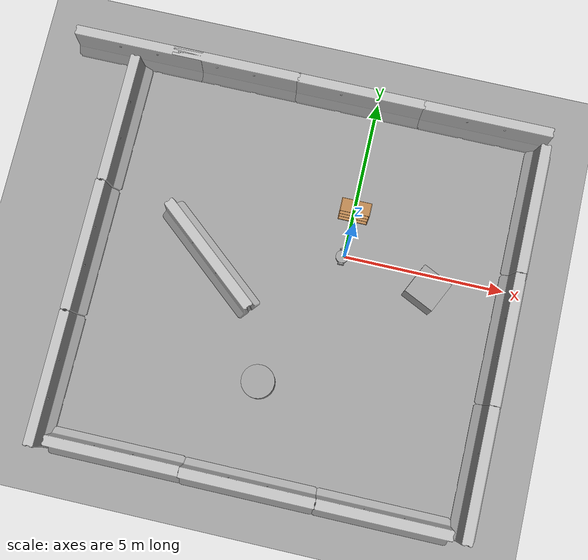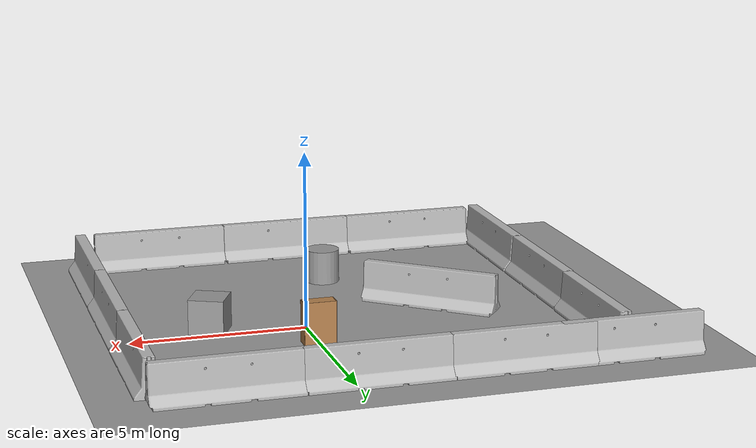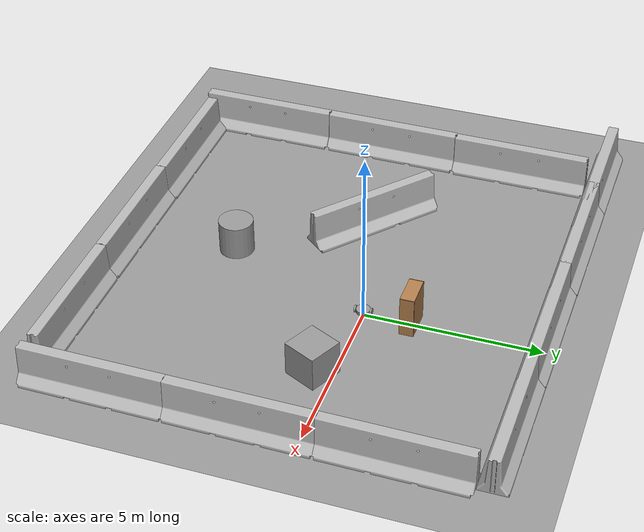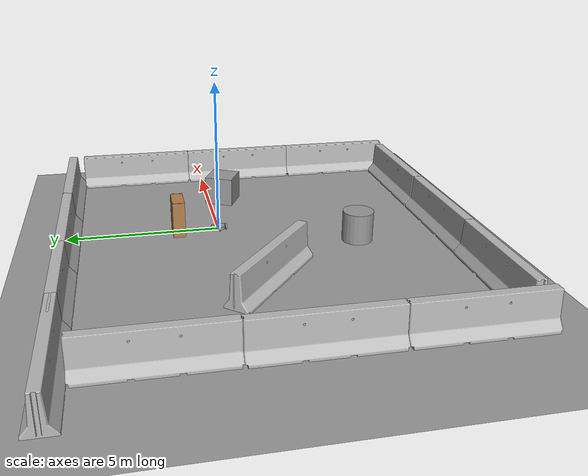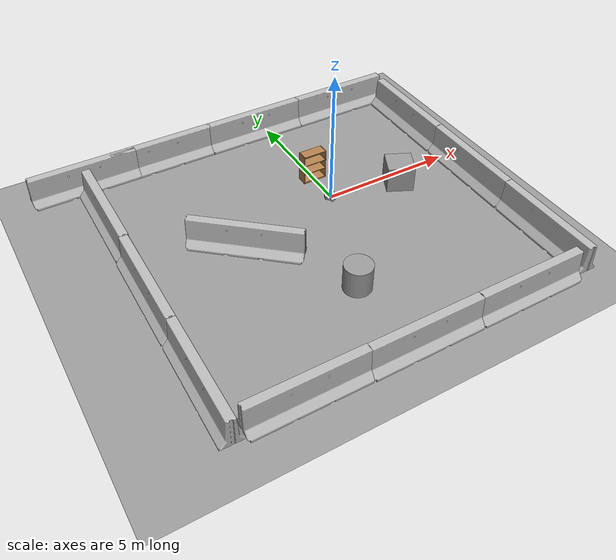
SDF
<sdf version="1.6">
 <world name="default">
  <light name="sun" type="directional">
   <pose>0 0 10 0 -0 0</pose>
   <diffuse>0.8 0.8 0.8 1</diffuse>
   <specular>0.2 0.2 0.2 1</specular>
   <attenuation>
    <range>1000</range>
    <constant>0.9</constant>
    <linear>0.01</linear>
    <quadratic>0.001</quadratic>
   </attenuation>
   <direction>0.5 0.1 -0.9</direction>
  </light>
  <scene><ambient>0.4 0.4 0.4 1</ambient><background>0.7 0.7 0.7 1</background><shadows>1</shadows></scene>
  <physics name="default_physics" default="0" type="ode">
   <max_step_size>0.01</max_step_size>
   <real_time_factor>1</real_time_factor>
   <real_time_update_rate>100</real_time_update_rate>
  </physics>
  <model name="bookshelf">
   <static>1</static>
   <link name="link">
    <inertial><mass>1</mass></inertial>
    <collision name="back">
     <pose>0 0.005 0.6 0 -0 0</pose>
     <geometry><box><size>0.9 0.01 1.2</size></box></geometry>
    </collision>
    <visual name="visual1">
     <pose>0 0.005 0.6 0 -0 0</pose>
     <geometry><box><size>0.9 0.01 1.2</size></box></geometry>
     <material>
      <script><uri>file://media/materials/scripts/gazebo.material</uri><name>Gazebo/Wood</name></script>
     </material>
    </visual>
    <collision name="left_side">
     <pose>0.45 -0.195 0.6 0 -0 0</pose>
     <geometry><box><size>0.02 0.4 1.2</size></box></geometry>
    </collision>
    <visual name="visual2">
     <pose>0.45 -0.195 0.6 0 -0 0</pose>
     <geometry><box><size>0.02 0.4 1.2</size></box></geometry>
     <material>
      <script><uri>file://media/materials/scripts/gazebo.material</uri><name>Gazebo/Wood</name></script>
     </material>
    </visual>
    <collision name="right_side">
     <pose>-0.45 -0.195 0.6 0 -0 0</pose>
     <geometry><box><size>0.02 0.4 1.2</size></box></geometry>
    </collision>
    <visual name="visual3">
     <pose>-0.45 -0.195 0.6 0 -0 0</pose>
     <geometry><box><size>0.02 0.4 1.2</size></box></geometry>
     <material>
      <script><uri>file://media/materials/scripts/gazebo.material</uri><name>Gazebo/Wood</name></script>
     </material>
    </visual>
    <collision name="bottom">
     <pose>0 -0.195 0.03 0 -0 0</pose>
     <geometry><box><size>0.88 0.4 0.06</size></box></geometry>
    </collision>
    <visual name="visual4">
     <pose>0 -0.195 0.03 0 -0 0</pose>
     <geometry><box><size>0.88 0.4 0.06</size></box></geometry>
     <material>
      <script><uri>file://media/materials/scripts/gazebo.material</uri><name>Gazebo/Wood</name></script>
     </material>
    </visual>
    <collision name="top">
     <pose>0 -0.195 1.19 0 -0 0</pose>
     <geometry><box><size>0.88 0.4 0.02</size></box></geometry>
    </collision>
    <visual name="visual5">
     <pose>0 -0.195 1.19 0 -0 0</pose>
     <geometry><box><size>0.88 0.4 0.02</size></box></geometry>
     <material>
      <script><uri>file://media/materials/scripts/gazebo.material</uri><name>Gazebo/Wood</name></script>
     </material>
    </visual>
    <collision name="low_shelf">
     <pose>0 -0.195 0.43 0 -0 0</pose>
     <geometry><box><size>0.88 0.4 0.02</size></box></geometry>
    </collision>
    <visual name="visual6">
     <pose>0 -0.195 0.43 0 -0 0</pose>
     <geometry><box><size>0.88 0.4 0.02</size></box></geometry>
     <material>
      <script><uri>file://media/materials/scripts/gazebo.material</uri><name>Gazebo/Wood</name></script>
     </material>
    </visual>
    <collision name="high_shelf">
     <pose>0 -0.195 0.8 0 -0 0</pose>
     <geometry><box><size>0.88 0.4 0.02</size></box></geometry>
    </collision>
    <visual name="visual7">
     <pose>0 -0.195 0.8 0 -0 0</pose>
     <geometry><box><size>0.88 0.4 0.02</size></box></geometry>
     <material>
      <script><uri>file://media/materials/scripts/gazebo.material</uri><name>Gazebo/Wood</name></script>
     </material>
    </visual>
    <velocity_decay><linear>0</linear><angular>0</angular></velocity_decay>
   </link>
   <pose>0 1.53026 0 0 -0 0</pose>
  </model>
  <model name="jersey_barrier">
   <static>1</static>
   <link name="link">
    <visual name="visual">
     <geometry>
      <mesh><uri>model://jersey_barrier/meshes/jersey_barrier.dae</uri><scale>1 1 1</scale></mesh>
     </geometry>
    </visual>
    <collision name="upright">
     <pose>0 0 0.5715 0 -0 0</pose>
     <geometry><box><size>4.06542 0.3063 1.143</size></box></geometry>
    </collision>
    <collision name="base">
     <pose>0 0 0.032258 0 -0 0</pose>
     <geometry><box><size>4.06542 0.8107 0.064516</size></box></geometry>
    </collision>
    <collision name="base2">
     <pose>0 0 0.1 0 -0 0</pose>
     <geometry><box><size>4.06542 0.65 0.1</size></box></geometry>
    </collision>
    <collision name="base3">
     <pose>0 0 0.2 0 -0 0</pose>
     <geometry><box><size>4.06542 0.5 0.1</size></box></geometry>
    </collision>
    <collision name="left-angle">
     <pose>0 -0.224 0.2401 0.9 -0 0</pose>
     <geometry><box><size>4.06542 0.5 0.064516</size></box></geometry>
    </collision>
    <collision name="right-angle">
     <pose>0 0.224 0.2401 -0.9 0 0</pose>
     <geometry><box><size>4.06542 0.5 0.064516</size></box></geometry>
    </collision>
    <velocity_decay><linear>0</linear><angular>0</angular></velocity_decay>
   </link>
   <pose>-4 -1 0 0 0 -0.7</pose>
  </model>
  <model name="ground_plane_0">
   <static>1</static>
   <link name="link">
    <collision name="collision">
     <geometry><plane><normal>0 0 1</normal><size>100 100</size></plane></geometry>
     <surface><friction><ode><mu>100</mu><mu2>50</mu2></ode></friction></surface>
    </collision>
    <visual name="visual">
     <cast_shadows>0</cast_shadows>
     <geometry><plane><normal>0 0 1</normal><size>100 100</size></plane></geometry>
     <material>
      <script><uri>file://media/materials/scripts/gazebo.material</uri><name>Gazebo/Grey</name></script>
     </material>
    </visual>
    <velocity_decay><linear>0</linear><angular>0</angular></velocity_decay>
   </link>
   <pose>0.497681 0 0 0 -0 0</pose>
  </model>
  <model name="unit_cylinder_1">
   <pose>-1.69708 -4.3607 0.49912 0 0 -1e-06</pose>
   <link name="link">
    <inertial>
     <mass>1</mass>
     <inertia><ixx>1</ixx><ixy>0</ixy><ixz>0</ixz><iyy>1</iyy><iyz>0</iyz><izz>1</izz></inertia>
    </inertial>
    <collision name="collision">
     <geometry><cylinder><radius>0.5</radius><length>1</length></cylinder></geometry>
    </collision>
    <visual name="visual">
     <geometry><cylinder><radius>0.5</radius><length>1</length></cylinder></geometry>
     <material>
      <script><uri>file://media/materials/scripts/gazebo.material</uri><name>Gazebo/Grey</name></script>
     </material>
    </visual>
    <velocity_decay><linear>0</linear><angular>0</angular></velocity_decay>
   </link>
   <static>0</static>
  </model>
  <gravity>0 0 -9.8</gravity>
  <magnetic_field>6e-06 2.3e-05 -4.2e-05</magnetic_field>
  <atmosphere type="adiabatic"/>
  <spherical_coordinates>
   <surface_model>EARTH_WGS84</surface_model>
   <latitude_deg>0</latitude_deg>
   <longitude_deg>0</longitude_deg>
   <elevation>0</elevation>
   <heading_deg>0</heading_deg>
  </spherical_coordinates>
  <model name="jersey_barrier_0">
   <static>1</static>
   <link name="link">
    <visual name="visual">
     <geometry>
      <mesh><uri>model://jersey_barrier/meshes/jersey_barrier.dae</uri><scale>1 1 1</scale></mesh>
     </geometry>
    </visual>
    <collision name="upright">
     <pose>0 0 0.5715 0 -0 0</pose>
     <geometry><box><size>4.06542 0.3063 1.143</size></box></geometry>
    </collision>
    <collision name="base">
     <pose>0 0 0.032258 0 -0 0</pose>
     <geometry><box><size>4.06542 0.8107 0.064516</size></box></geometry>
    </collision>
    <collision name="base2">
     <pose>0 0 0.1 0 -0 0</pose>
     <geometry><box><size>4.06542 0.65 0.1</size></box></geometry>
    </collision>
    <collision name="base3">
     <pose>0 0 0.2 0 -0 0</pose>
     <geometry><box><size>4.06542 0.5 0.1</size></box></geometry>
    </collision>
    <collision name="left-angle">
     <pose>0 -0.224 0.2401 0.9 -0 0</pose>
     <geometry><box><size>4.06542 0.5 0.064516</size></box></geometry>
    </collision>
    <collision name="right-angle">
     <pose>0 0.224 0.2401 -0.9 0 0</pose>
     <geometry><box><size>4.06542 0.5 0.064516</size></box></geometry>
    </collision>
   </link>
   <pose>2.71724 -7.40041 0 0 -0 0</pose>
  </model>
  <model name="jersey_barrier_1">
   <static>1</static>
   <link name="link">
    <visual name="visual">
     <geometry>
      <mesh><uri>model://jersey_barrier/meshes/jersey_barrier.dae</uri><scale>1 1 1</scale></mesh>
     </geometry>
    </visual>
    <collision name="upright">
     <pose>0 0 0.5715 0 -0 0</pose>
     <geometry><box><size>4.06542 0.3063 1.143</size></box></geometry>
    </collision>
    <collision name="base">
     <pose>0 0 0.032258 0 -0 0</pose>
     <geometry><box><size>4.06542 0.8107 0.064516</size></box></geometry>
    </collision>
    <collision name="base2">
     <pose>0 0 0.1 0 -0 0</pose>
     <geometry><box><size>4.06542 0.65 0.1</size></box></geometry>
    </collision>
    <collision name="base3">
     <pose>0 0 0.2 0 -0 0</pose>
     <geometry><box><size>4.06542 0.5 0.1</size></box></geometry>
    </collision>
    <collision name="left-angle">
     <pose>0 -0.224 0.2401 0.9 -0 0</pose>
     <geometry><box><size>4.06542 0.5 0.064516</size></box></geometry>
    </collision>
    <collision name="right-angle">
     <pose>0 0.224 0.2401 -0.9 0 0</pose>
     <geometry><box><size>4.06542 0.5 0.064516</size></box></geometry>
    </collision>
   </link>
   <pose>-1.3218 -7.40063 0 0 -0 0</pose>
  </model>
  <model name="jersey_barrier_2">
   <static>1</static>
   <link name="link">
    <visual name="visual">
     <geometry>
      <mesh><uri>model://jersey_barrier/meshes/jersey_barrier.dae</uri><scale>1 1 1</scale></mesh>
     </geometry>
    </visual>
    <collision name="upright">
     <pose>0 0 0.5715 0 -0 0</pose>
     <geometry><box><size>4.06542 0.3063 1.143</size></box></geometry>
    </collision>
    <collision name="base">
     <pose>0 0 0.032258 0 -0 0</pose>
     <geometry><box><size>4.06542 0.8107 0.064516</size></box></geometry>
    </collision>
    <collision name="base2">
     <pose>0 0 0.1 0 -0 0</pose>
     <geometry><box><size>4.06542 0.65 0.1</size></box></geometry>
    </collision>
    <collision name="base3">
     <pose>0 0 0.2 0 -0 0</pose>
     <geometry><box><size>4.06542 0.5 0.1</size></box></geometry>
    </collision>
    <collision name="left-angle">
     <pose>0 -0.224 0.2401 0.9 -0 0</pose>
     <geometry><box><size>4.06542 0.5 0.064516</size></box></geometry>
    </collision>
    <collision name="right-angle">
     <pose>0 0.224 0.2401 -0.9 0 0</pose>
     <geometry><box><size>4.06542 0.5 0.064516</size></box></geometry>
    </collision>
   </link>
   <pose>-5.33964 -7.38225 0 0 -0 0</pose>
  </model>
  <model name="jersey_barrier_3">
   <static>1</static>
   <link name="link">
    <visual name="visual">
     <geometry>
      <mesh><uri>model://jersey_barrier/meshes/jersey_barrier.dae</uri><scale>1 1 1</scale></mesh>
     </geometry>
    </visual>
    <collision name="upright">
     <pose>0 0 0.5715 0 -0 0</pose>
     <geometry><box><size>4.06542 0.3063 1.143</size></box></geometry>
    </collision>
    <collision name="base">
     <pose>0 0 0.032258 0 -0 0</pose>
     <geometry><box><size>4.06542 0.8107 0.064516</size></box></geometry>
    </collision>
    <collision name="base2">
     <pose>0 0 0.1 0 -0 0</pose>
     <geometry><box><size>4.06542 0.65 0.1</size></box></geometry>
    </collision>
    <collision name="base3">
     <pose>0 0 0.2 0 -0 0</pose>
     <geometry><box><size>4.06542 0.5 0.1</size></box></geometry>
    </collision>
    <collision name="left-angle">
     <pose>0 -0.224 0.2401 0.9 -0 0</pose>
     <geometry><box><size>4.06542 0.5 0.064516</size></box></geometry>
    </collision>
    <collision name="right-angle">
     <pose>0 0.224 0.2401 -0.9 0 0</pose>
     <geometry><box><size>4.06542 0.5 0.064516</size></box></geometry>
    </collision>
   </link>
   <pose>5.17027 -5.5501 0 0 -0 1.56433</pose>
  </model>
  <model name="jersey_barrier_3_clone">
   <static>1</static>
   <link name="link">
    <visual name="visual">
     <geometry>
      <mesh><uri>model://jersey_barrier/meshes/jersey_barrier.dae</uri><scale>1 1 1</scale></mesh>
     </geometry>
    </visual>
    <collision name="upright">
     <pose>0 0 0.5715 0 -0 0</pose>
     <geometry><box><size>4.06542 0.3063 1.143</size></box></geometry>
    </collision>
    <collision name="base">
     <pose>0 0 0.032258 0 -0 0</pose>
     <geometry><box><size>4.06542 0.8107 0.064516</size></box></geometry>
    </collision>
    <collision name="base2">
     <pose>0 0 0.1 0 -0 0</pose>
     <geometry><box><size>4.06542 0.65 0.1</size></box></geometry>
    </collision>
    <collision name="base3">
     <pose>0 0 0.2 0 -0 0</pose>
     <geometry><box><size>4.06542 0.5 0.1</size></box></geometry>
    </collision>
    <collision name="left-angle">
     <pose>0 -0.224 0.2401 0.9 -0 0</pose>
     <geometry><box><size>4.06542 0.5 0.064516</size></box></geometry>
    </collision>
    <collision name="right-angle">
     <pose>0 0.224 0.2401 -0.9 0 0</pose>
     <geometry><box><size>4.06542 0.5 0.064516</size></box></geometry>
    </collision>
   </link>
   <pose>5.19949 -1.52797 0 0 -0 1.56433</pose>
  </model>
  <model name="jersey_barrier_3_clone_0">
   <static>1</static>
   <link name="link">
    <visual name="visual">
     <geometry>
      <mesh><uri>model://jersey_barrier/meshes/jersey_barrier.dae</uri><scale>1 1 1</scale></mesh>
     </geometry>
    </visual>
    <collision name="upright">
     <pose>0 0 0.5715 0 -0 0</pose>
     <geometry><box><size>4.06542 0.3063 1.143</size></box></geometry>
    </collision>
    <collision name="base">
     <pose>0 0 0.032258 0 -0 0</pose>
     <geometry><box><size>4.06542 0.8107 0.064516</size></box></geometry>
    </collision>
    <collision name="base2">
     <pose>0 0 0.1 0 -0 0</pose>
     <geometry><box><size>4.06542 0.65 0.1</size></box></geometry>
    </collision>
    <collision name="base3">
     <pose>0 0 0.2 0 -0 0</pose>
     <geometry><box><size>4.06542 0.5 0.1</size></box></geometry>
    </collision>
    <collision name="left-angle">
     <pose>0 -0.224 0.2401 0.9 -0 0</pose>
     <geometry><box><size>4.06542 0.5 0.064516</size></box></geometry>
    </collision>
    <collision name="right-angle">
     <pose>0 0.224 0.2401 -0.9 0 0</pose>
     <geometry><box><size>4.06542 0.5 0.064516</size></box></geometry>
    </collision>
   </link>
   <pose>5.22886 2.50496 0 0 -0 1.56433</pose>
  </model>
  <model name="jersey_barrier_4">
   <static>1</static>
   <link name="link">
    <visual name="visual">
     <geometry>
      <mesh><uri>model://jersey_barrier/meshes/jersey_barrier.dae</uri><scale>1 1 1</scale></mesh>
     </geometry>
    </visual>
    <collision name="upright">
     <pose>0 0 0.5715 0 -0 0</pose>
     <geometry><box><size>4.06542 0.3063 1.143</size></box></geometry>
    </collision>
    <collision name="base">
     <pose>0 0 0.032258 0 -0 0</pose>
     <geometry><box><size>4.06542 0.8107 0.064516</size></box></geometry>
    </collision>
    <collision name="base2">
     <pose>0 0 0.1 0 -0 0</pose>
     <geometry><box><size>4.06542 0.65 0.1</size></box></geometry>
    </collision>
    <collision name="base3">
     <pose>0 0 0.2 0 -0 0</pose>
     <geometry><box><size>4.06542 0.5 0.1</size></box></geometry>
    </collision>
    <collision name="left-angle">
     <pose>0 -0.224 0.2401 0.9 -0 0</pose>
     <geometry><box><size>4.06542 0.5 0.064516</size></box></geometry>
    </collision>
    <collision name="right-angle">
     <pose>0 0.224 0.2401 -0.9 0 0</pose>
     <geometry><box><size>4.06542 0.5 0.064516</size></box></geometry>
    </collision>
   </link>
   <pose>3.35808 4.93615 0 0 -0 0</pose>
  </model>
  <model name="jersey_barrier_4_clone">
   <static>1</static>
   <link name="link">
    <visual name="visual">
     <geometry>
      <mesh><uri>model://jersey_barrier/meshes/jersey_barrier.dae</uri><scale>1 1 1</scale></mesh>
     </geometry>
    </visual>
    <collision name="upright">
     <pose>0 0 0.5715 0 -0 0</pose>
     <geometry><box><size>4.06542 0.3063 1.143</size></box></geometry>
    </collision>
    <collision name="base">
     <pose>0 0 0.032258 0 -0 0</pose>
     <geometry><box><size>4.06542 0.8107 0.064516</size></box></geometry>
    </collision>
    <collision name="base2">
     <pose>0 0 0.1 0 -0 0</pose>
     <geometry><box><size>4.06542 0.65 0.1</size></box></geometry>
    </collision>
    <collision name="base3">
     <pose>0 0 0.2 0 -0 0</pose>
     <geometry><box><size>4.06542 0.5 0.1</size></box></geometry>
    </collision>
    <collision name="left-angle">
     <pose>0 -0.224 0.2401 0.9 -0 0</pose>
     <geometry><box><size>4.06542 0.5 0.064516</size></box></geometry>
    </collision>
    <collision name="right-angle">
     <pose>0 0.224 0.2401 -0.9 0 0</pose>
     <geometry><box><size>4.06542 0.5 0.064516</size></box></geometry>
    </collision>
   </link>
   <pose>-0.593883 4.93879 0 0 -0 0</pose>
  </model>
  <model name="jersey_barrier_4_clone_0">
   <static>1</static>
   <link name="link">
    <visual name="visual">
     <geometry>
      <mesh><uri>model://jersey_barrier/meshes/jersey_barrier.dae</uri><scale>1 1 1</scale></mesh>
     </geometry>
    </visual>
    <collision name="upright">
     <pose>0 0 0.5715 0 -0 0</pose>
     <geometry><box><size>4.06542 0.3063 1.143</size></box></geometry>
    </collision>
    <collision name="base">
     <pose>0 0 0.032258 0 -0 0</pose>
     <geometry><box><size>4.06542 0.8107 0.064516</size></box></geometry>
    </collision>
    <collision name="base2">
     <pose>0 0 0.1 0 -0 0</pose>
     <geometry><box><size>4.06542 0.65 0.1</size></box></geometry>
    </collision>
    <collision name="base3">
     <pose>0 0 0.2 0 -0 0</pose>
     <geometry><box><size>4.06542 0.5 0.1</size></box></geometry>
    </collision>
    <collision name="left-angle">
     <pose>0 -0.224 0.2401 0.9 -0 0</pose>
     <geometry><box><size>4.06542 0.5 0.064516</size></box></geometry>
    </collision>
    <collision name="right-angle">
     <pose>0 0.224 0.2401 -0.9 0 0</pose>
     <geometry><box><size>4.06542 0.5 0.064516</size></box></geometry>
    </collision>
   </link>
   <pose>-4.54485 4.94566 0 0 -0 0</pose>
  </model>
  <model name="jersey_barrier_4_clone_1">
   <static>1</static>
   <link name="link">
    <visual name="visual">
     <geometry>
      <mesh><uri>model://jersey_barrier/meshes/jersey_barrier.dae</uri><scale>1 1 1</scale></mesh>
     </geometry>
    </visual>
    <collision name="upright">
     <pose>0 0 0.5715 0 -0 0</pose>
     <geometry><box><size>4.06542 0.3063 1.143</size></box></geometry>
    </collision>
    <collision name="base">
     <pose>0 0 0.032258 0 -0 0</pose>
     <geometry><box><size>4.06542 0.8107 0.064516</size></box></geometry>
    </collision>
    <collision name="base2">
     <pose>0 0 0.1 0 -0 0</pose>
     <geometry><box><size>4.06542 0.65 0.1</size></box></geometry>
    </collision>
    <collision name="base3">
     <pose>0 0 0.2 0 -0 0</pose>
     <geometry><box><size>4.06542 0.5 0.1</size></box></geometry>
    </collision>
    <collision name="left-angle">
     <pose>0 -0.224 0.2401 0.9 -0 0</pose>
     <geometry><box><size>4.06542 0.5 0.064516</size></box></geometry>
    </collision>
    <collision name="right-angle">
     <pose>0 0.224 0.2401 -0.9 0 0</pose>
     <geometry><box><size>4.06542 0.5 0.064516</size></box></geometry>
    </collision>
   </link>
   <pose>-7.62605 4.94189 0 0 -0 0</pose>
  </model>
  <model name="jersey_barrier_3_clone_0_clone">
   <static>1</static>
   <link name="link">
    <visual name="visual">
     <geometry>
      <mesh><uri>model://jersey_barrier/meshes/jersey_barrier.dae</uri><scale>1 1 1</scale></mesh>
     </geometry>
    </visual>
    <collision name="upright">
     <pose>0 0 0.5715 0 -0 0</pose>
     <geometry><box><size>4.06542 0.3063 1.143</size></box></geometry>
    </collision>
    <collision name="base">
     <pose>0 0 0.032258 0 -0 0</pose>
     <geometry><box><size>4.06542 0.8107 0.064516</size></box></geometry>
    </collision>
    <collision name="base2">
     <pose>0 0 0.1 0 -0 0</pose>
     <geometry><box><size>4.06542 0.65 0.1</size></box></geometry>
    </collision>
    <collision name="base3">
     <pose>0 0 0.2 0 -0 0</pose>
     <geometry><box><size>4.06542 0.5 0.1</size></box></geometry>
    </collision>
    <collision name="left-angle">
     <pose>0 -0.224 0.2401 0.9 -0 0</pose>
     <geometry><box><size>4.06542 0.5 0.064516</size></box></geometry>
    </collision>
    <collision name="right-angle">
     <pose>0 0.224 0.2401 -0.9 0 0</pose>
     <geometry><box><size>4.06542 0.5 0.064516</size></box></geometry>
    </collision>
   </link>
   <pose>-7.73181 -5.62223 0 0 -0 1.56433</pose>
  </model>
  <model name="jersey_barrier_3_clone_0_clone_0">
   <static>1</static>
   <link name="link">
    <visual name="visual">
     <geometry>
      <mesh><uri>model://jersey_barrier/meshes/jersey_barrier.dae</uri><scale>1 1 1</scale></mesh>
     </geometry>
    </visual>
    <collision name="upright">
     <pose>0 0 0.5715 0 -0 0</pose>
     <geometry><box><size>4.06542 0.3063 1.143</size></box></geometry>
    </collision>
    <collision name="base">
     <pose>0 0 0.032258 0 -0 0</pose>
     <geometry><box><size>4.06542 0.8107 0.064516</size></box></geometry>
    </collision>
    <collision name="base2">
     <pose>0 0 0.1 0 -0 0</pose>
     <geometry><box><size>4.06542 0.65 0.1</size></box></geometry>
    </collision>
    <collision name="base3">
     <pose>0 0 0.2 0 -0 0</pose>
     <geometry><box><size>4.06542 0.5 0.1</size></box></geometry>
    </collision>
    <collision name="left-angle">
     <pose>0 -0.224 0.2401 0.9 -0 0</pose>
     <geometry><box><size>4.06542 0.5 0.064516</size></box></geometry>
    </collision>
    <collision name="right-angle">
     <pose>0 0.224 0.2401 -0.9 0 0</pose>
     <geometry><box><size>4.06542 0.5 0.064516</size></box></geometry>
    </collision>
   </link>
   <pose>-7.70422 -1.55184 0 0 -0 1.56433</pose>
  </model>
  <model name="jersey_barrier_3_clone_0_clone_1">
   <static>1</static>
   <link name="link">
    <visual name="visual">
     <geometry>
      <mesh><uri>model://jersey_barrier/meshes/jersey_barrier.dae</uri><scale>1 1 1</scale></mesh>
     </geometry>
    </visual>
    <collision name="upright">
     <pose>0 0 0.5715 0 -0 0</pose>
     <geometry><box><size>4.06542 0.3063 1.143</size></box></geometry>
    </collision>
    <collision name="base">
     <pose>0 0 0.032258 0 -0 0</pose>
     <geometry><box><size>4.06542 0.8107 0.064516</size></box></geometry>
    </collision>
    <collision name="base2">
     <pose>0 0 0.1 0 -0 0</pose>
     <geometry><box><size>4.06542 0.65 0.1</size></box></geometry>
    </collision>
    <collision name="base3">
     <pose>0 0 0.2 0 -0 0</pose>
     <geometry><box><size>4.06542 0.5 0.1</size></box></geometry>
    </collision>
    <collision name="left-angle">
     <pose>0 -0.224 0.2401 0.9 -0 0</pose>
     <geometry><box><size>4.06542 0.5 0.064516</size></box></geometry>
    </collision>
    <collision name="right-angle">
     <pose>0 0.224 0.2401 -0.9 0 0</pose>
     <geometry><box><size>4.06542 0.5 0.064516</size></box></geometry>
    </collision>
   </link>
   <pose>-7.64787 2.50968 0 0 -0 1.56433</pose>
  </model>
  <model name="unit_box_0">
   <pose>2.62254 -0.540598 0.49967 0.00066 -0 -0.445054</pose>
   <link name="link">
    <inertial>
     <mass>1</mass>
     <inertia>
      <ixx>0.166667</ixx>
      <ixy>0</ixy>
      <ixz>0</ixz>
      <iyy>0.166667</iyy>
      <iyz>0</iyz>
      <izz>0.166667</izz>
     </inertia>
    </inertial>
    <collision name="collision"><geometry><box><size>1 1 1</size></box></geometry></collision>
    <visual name="visual">
     <geometry><box><size>1 1 1</size></box></geometry>
     <material>
      <script><name>Gazebo/Grey</name><uri>file://media/materials/scripts/gazebo.material</uri></script>
     </material>
    </visual>
   </link>
  </model>
  <model name="diffdrive">
   <link name="link_0">
    <pose>0.001888 -0.000564 -0.002404 0 -0 0</pose>
    <inertial>
     <mass>1</mass>
     <inertia><ixx>0.145833</ixx><ixy>0</ixy><ixz>0</ixz><iyy>0.145833</iyy><iyz>0</iyz><izz>0.125</izz></inertia>
    </inertial>
    <visual name="visual">
     <geometry><cylinder><radius>0.2</radius><length>0.1</length></cylinder></geometry>
     <material>
      <lighting>1</lighting>
      <script><uri>file://media/materials/scripts/gazebo.material</uri><name>Gazebo/Grey</name></script>
      <ambient>0.3 0.3 0.3 1</ambient>
      <diffuse>0.7 0.7 0.7 1</diffuse>
      <specular>0.01 0.01 0.01 1</specular>
      <emissive>0 0 0 1</emissive>
      <shader type="vertex"><normal_map>__default__</normal_map></shader>
     </material>
    </visual>
    <collision name="collision">
     <geometry><cylinder><radius>0.2</radius><length>0.1</length></cylinder></geometry>
     <surface>
      <friction>
       <ode><mu>1</mu><mu2>1</mu2><fdir1>0 0 0</fdir1><slip1>0</slip1><slip2>0</slip2></ode>
       <torsional>
        <coefficient>1</coefficient>
        <patch_radius>0</patch_radius>
        <surface_radius>0</surface_radius>
        <use_patch_radius>1</use_patch_radius>
        <ode><slip>0</slip></ode>
       </torsional>
      </friction>
      <bounce><restitution_coefficient>0</restitution_coefficient><threshold>1e+06</threshold></bounce>
      <contact>
       <collide_without_contact>0</collide_without_contact>
       <collide_without_contact_bitmask>1</collide_without_contact_bitmask>
       <collide_bitmask>1</collide_bitmask>
       <ode>
        <soft_cfm>0</soft_cfm>
        <soft_erp>0.2</soft_erp>
        <kp>1e+13</kp>
        <kd>1</kd>
        <max_vel>0.01</max_vel>
        <min_depth>0</min_depth>
       </ode>
       <bullet>
        <split_impulse>1</split_impulse>
        <split_impulse_penetration_threshold>-0.01</split_impulse_penetration_threshold>
        <soft_cfm>0</soft_cfm>
        <soft_erp>0.2</soft_erp>
        <kp>1e+13</kp>
        <kd>1</kd>
       </bullet>
      </contact>
     </surface>
    </collision>
   </link>
   <link name="link_1">
    <pose>0.001888 -0.225573 -0.002404 1.5707 -0 0</pose>
    <inertial>
     <mass>1</mass>
     <inertia><ixx>0.145833</ixx><ixy>0</ixy><ixz>0</ixz><iyy>0.145833</iyy><iyz>0</iyz><izz>0.125</izz></inertia>
    </inertial>
    <visual name="visual">
     <geometry><cylinder><radius>0.1</radius><length>0.05</length></cylinder></geometry>
     <material>
      <lighting>1</lighting>
      <script><uri>file://media/materials/scripts/gazebo.material</uri><name>Gazebo/Grey</name></script>
      <ambient>0.3 0.3 0.3 1</ambient>
      <diffuse>0.7 0.7 0.7 1</diffuse>
      <specular>0.01 0.01 0.01 1</specular>
      <emissive>0 0 0 1</emissive>
      <shader type="vertex"><normal_map>__default__</normal_map></shader>
     </material>
    </visual>
    <collision name="collision">
     <geometry><cylinder><radius>0.1</radius><length>0.05</length></cylinder></geometry>
     <surface>
      <friction>
       <ode><mu>1</mu><mu2>1</mu2><fdir1>0 0 0</fdir1><slip1>0</slip1><slip2>0</slip2></ode>
       <torsional>
        <coefficient>1</coefficient>
        <patch_radius>0</patch_radius>
        <surface_radius>0</surface_radius>
        <use_patch_radius>1</use_patch_radius>
        <ode><slip>0</slip></ode>
       </torsional>
      </friction>
      <bounce><restitution_coefficient>0</restitution_coefficient><threshold>1e+06</threshold></bounce>
      <contact>
       <collide_without_contact>0</collide_without_contact>
       <collide_without_contact_bitmask>1</collide_without_contact_bitmask>
       <collide_bitmask>1</collide_bitmask>
       <ode>
        <soft_cfm>0</soft_cfm>
        <soft_erp>0.2</soft_erp>
        <kp>1e+13</kp>
        <kd>1</kd>
        <max_vel>0.01</max_vel>
        <min_depth>0</min_depth>
       </ode>
       <bullet>
        <split_impulse>1</split_impulse>
        <split_impulse_penetration_threshold>-0.01</split_impulse_penetration_threshold>
        <soft_cfm>0</soft_cfm>
        <soft_erp>0.2</soft_erp>
        <kp>1e+13</kp>
        <kd>1</kd>
       </bullet>
      </contact>
     </surface>
    </collision>
   </link>
   <link name="link_1_clone">
    <pose>0.001888 0.224446 -0.002404 1.5707 -0 0</pose>
    <inertial>
     <mass>1</mass>
     <inertia><ixx>0.145833</ixx><ixy>0</ixy><ixz>0</ixz><iyy>0.145833</iyy><iyz>0</iyz><izz>0.125</izz></inertia>
    </inertial>
    <visual name="visual">
     <geometry><cylinder><radius>0.1</radius><length>0.05</length></cylinder></geometry>
     <material>
      <lighting>1</lighting>
      <script><uri>file://media/materials/scripts/gazebo.material</uri><name>Gazebo/Grey</name></script>
      <ambient>0.3 0.3 0.3 1</ambient>
      <diffuse>0.7 0.7 0.7 1</diffuse>
      <specular>0.01 0.01 0.01 1</specular>
      <emissive>0 0 0 1</emissive>
      <shader type="vertex"><normal_map>__default__</normal_map></shader>
     </material>
    </visual>
    <collision name="collision">
     <geometry><cylinder><radius>0.1</radius><length>0.05</length></cylinder></geometry>
     <surface>
      <friction>
       <ode><mu>1</mu><mu2>1</mu2><fdir1>0 0 0</fdir1><slip1>0</slip1><slip2>0</slip2></ode>
       <torsional>
        <coefficient>1</coefficient>
        <patch_radius>0</patch_radius>
        <surface_radius>0</surface_radius>
        <use_patch_radius>1</use_patch_radius>
        <ode><slip>0</slip></ode>
       </torsional>
      </friction>
      <bounce><restitution_coefficient>0</restitution_coefficient><threshold>1e+06</threshold></bounce>
      <contact>
       <collide_without_contact>0</collide_without_contact>
       <collide_without_contact_bitmask>1</collide_without_contact_bitmask>
       <collide_bitmask>1</collide_bitmask>
       <ode>
        <soft_cfm>0</soft_cfm>
        <soft_erp>0.2</soft_erp>
        <kp>1e+13</kp>
        <kd>1</kd>
        <max_vel>0.01</max_vel>
        <min_depth>0</min_depth>
       </ode>
       <bullet>
        <split_impulse>1</split_impulse>
        <split_impulse_penetration_threshold>-0.01</split_impulse_penetration_threshold>
        <soft_cfm>0</soft_cfm>
        <soft_erp>0.2</soft_erp>
        <kp>1e+13</kp>
        <kd>1</kd>
       </bullet>
      </contact>
     </surface>
    </collision>
   </link>
   <link name="link_2">
    <pose>-0.173112 -0.000564 -0.077404 0 -0 0</pose>
    <inertial>
     <mass>1</mass>
     <inertia><ixx>0.1</ixx><ixy>0</ixy><ixz>0</ixz><iyy>0.1</iyy><iyz>0</iyz><izz>0.1</izz></inertia>
    </inertial>
    <visual name="visual">
     <geometry><sphere><radius>0.025</radius></sphere></geometry>
     <material>
      <lighting>1</lighting>
      <script><uri>file://media/materials/scripts/gazebo.material</uri><name>Gazebo/Grey</name></script>
      <ambient>0.3 0.3 0.3 1</ambient>
      <diffuse>0.7 0.7 0.7 1</diffuse>
      <specular>0.01 0.01 0.01 1</specular>
      <emissive>0 0 0 1</emissive>
      <shader type="vertex"><normal_map>__default__</normal_map></shader>
     </material>
    </visual>
    <collision name="collision">
     <geometry><sphere><radius>0.025</radius></sphere></geometry>
     <surface>
      <friction>
       <ode><mu>1</mu><mu2>1</mu2><fdir1>0 0 0</fdir1><slip1>0</slip1><slip2>0</slip2></ode>
       <torsional>
        <coefficient>1</coefficient>
        <patch_radius>0</patch_radius>
        <surface_radius>0</surface_radius>
        <use_patch_radius>1</use_patch_radius>
        <ode><slip>0</slip></ode>
       </torsional>
      </friction>
      <bounce><restitution_coefficient>0</restitution_coefficient><threshold>1e+06</threshold></bounce>
      <contact>
       <collide_without_contact>0</collide_without_contact>
       <collide_without_contact_bitmask>1</collide_without_contact_bitmask>
       <collide_bitmask>1</collide_bitmask>
       <ode>
        <soft_cfm>0</soft_cfm>
        <soft_erp>0.2</soft_erp>
        <kp>1e+13</kp>
        <kd>1</kd>
        <max_vel>0.01</max_vel>
        <min_depth>0</min_depth>
       </ode>
       <bullet>
        <split_impulse>1</split_impulse>
        <split_impulse_penetration_threshold>-0.01</split_impulse_penetration_threshold>
        <soft_cfm>0</soft_cfm>
        <soft_erp>0.2</soft_erp>
        <kp>1e+13</kp>
        <kd>1</kd>
       </bullet>
      </contact>
     </surface>
    </collision>
   </link>
   <model name="hokuyo">
    <link name="link">
     <gravity>0</gravity>
     <inertial>
      <mass>0.1</mass>
      <inertia><ixx>1</ixx><ixy>0</ixy><ixz>0</ixz><iyy>1</iyy><iyz>0</iyz><izz>1</izz></inertia>
     </inertial>
     <visual name="visual"><geometry><mesh><uri>model://hokuyo/meshes/hokuyo.dae</uri></mesh></geometry></visual>
     <sensor name="laser" type="ray">
      <pose>0.01 0 0.03 0 -0 0</pose>
      <ray>
       <scan>
        <horizontal>
         <samples>640</samples>
         <resolution>1</resolution>
         <min_angle>-2.26889</min_angle>
         <max_angle>2.2689</max_angle>
        </horizontal>
        <vertical><samples>1</samples><min_angle>0</min_angle><max_angle>0</max_angle></vertical>
       </scan>
       <range><min>0.08</min><max>10</max><resolution>0.01</resolution></range>
      </ray>
      <plugin name="laser_back" filename="libgazebo_ros_laser.so">
       <topicName>/hokuyo_laser</topicName>
       <frameName>hokuyo</frameName>
       <robotNamespace>/</robotNamespace>
      </plugin>
      <always_on>1</always_on>
      <update_rate>30</update_rate>
      <visualize>1</visualize>
     </sensor>
    </link>
    <pose>0.167446 0.002256 0.084616 0 -0 0</pose>
   </model>
   <joint name="LWJoint" type="revolute">
    <parent>link_0</parent>
    <child>link_1</child>
    <axis>
     <xyz>0 0 1</xyz>
     <use_parent_model_frame>0</use_parent_model_frame>
     <limit>
      <lower>-1.79769e+308</lower>
      <upper>1.79769e+308</upper>
      <effort>-1</effort>
      <velocity>-1</velocity>
     </limit>
     <dynamics>
      <spring_reference>0</spring_reference>
      <spring_stiffness>0</spring_stiffness>
      <damping>0</damping>
      <friction>0</friction>
     </dynamics>
    </axis>
    <physics>
     <ode><limit><cfm>0</cfm><erp>0.2</erp></limit><suspension><cfm>0</cfm><erp>0.2</erp></suspension></ode>
    </physics>
   </joint>
   <joint name="CasterJoint" type="ball">
    <parent>link_0</parent>
    <child>link_2</child>
    <physics>
     <ode><limit><cfm>0</cfm><erp>0.2</erp></limit><suspension><cfm>0</cfm><erp>0.2</erp></suspension></ode>
    </physics>
   </joint>
   <joint name="RWJoint" type="revolute">
    <parent>link_0</parent>
    <child>link_1_clone</child>
    <axis>
     <xyz>0 0 1</xyz>
     <use_parent_model_frame>0</use_parent_model_frame>
     <limit>
      <lower>-1.79769e+308</lower>
      <upper>1.79769e+308</upper>
      <effort>-1</effort>
      <velocity>-1</velocity>
     </limit>
     <dynamics>
      <spring_reference>0</spring_reference>
      <spring_stiffness>0</spring_stiffness>
      <damping>0</damping>
      <friction>0</friction>
     </dynamics>
    </axis>
    <physics>
     <ode><limit><cfm>0</cfm><erp>0.2</erp></limit><suspension><cfm>0</cfm><erp>0.2</erp></suspension></ode>
    </physics>
   </joint>
   <joint name="HokuyoJoint" type="fixed">
    <parent>link_0</parent>
    <child>hokuyo::link</child>
    <physics>
     <ode><limit><cfm>0</cfm><erp>0.2</erp></limit><suspension><cfm>0</cfm><erp>0.2</erp></suspension></ode>
    </physics>
   </joint>
   <plugin name="differential_drive_controller" filename="libgazebo_ros_diff_drive.so">
    <alwaysOn>true</alwaysOn>
    <updateRate>20</updateRate>
    <legacyMode>false</legacyMode>
    <leftJoint>LWJoint</leftJoint>
    <rightJoint>RWJoint</rightJoint>
    <wheelSeparation>0.5</wheelSeparation>
    <wheelDiameter>0.2</wheelDiameter>
    <torque>20</torque>
    <commandTopic>cmd_vel</commandTopic>
    <odometryTopic>odom</odometryTopic>
    <odometryFrame>odom</odometryFrame>
    <robotBaseFrame>chassis</robotBaseFrame>
    <robotNamespace>/</robotNamespace>
   </plugin>
   <static>0</static>
   <pose>-0.071111 -0.030498 0.102384 0.000143 0.000273 0.017939</pose>
  </model>
 </world>
</sdf>
